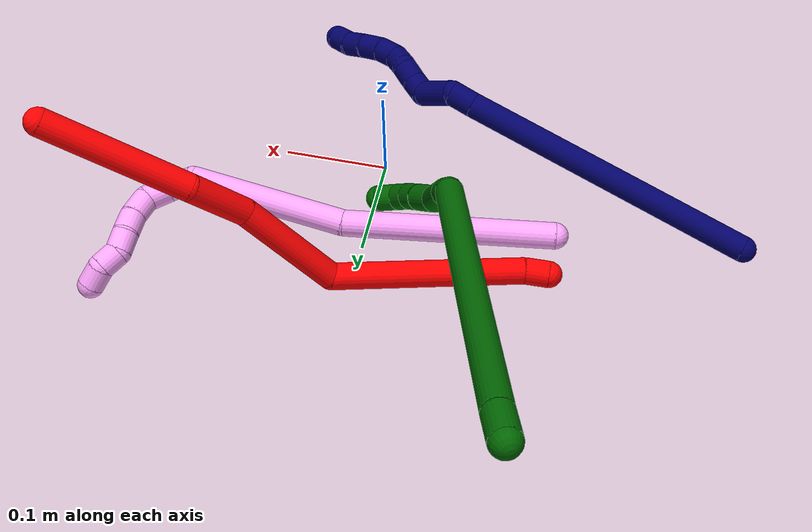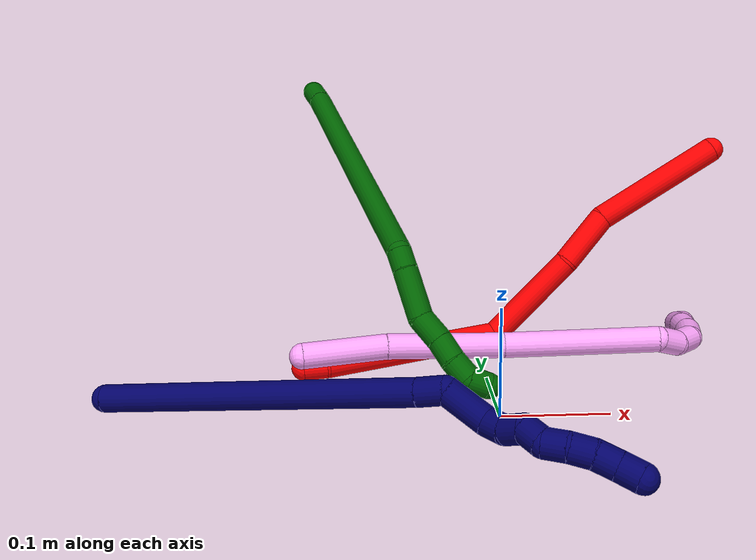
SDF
<sdf version="1.7">
 <world name="default">
  <model name="2">
   <static>0</static>
   <link name="2">
    <collision name="collision-cylinder-e_1_1_4">
     <pose>0.009162 0.001611 0.006476 -0.243884 0.94127 -0.124537</pose>
     <geometry><cylinder><radius>0.0125</radius><length>0.02267</length></cylinder></geometry>
     <surface>
      <friction><ode><mu>1.16</mu><mu2>1.16</mu2><slip1>0</slip1><slip2>0</slip2></ode></friction>
      <contact><ode><kp>1e+06</kp><kd>1</kd><max_vel>0</max_vel><min_depth>0.001</min_depth></ode></contact>
     </surface>
    </collision>
    <visual name="visual-cylinder-e_1_1_4">
     <pose>0.009162 0.001611 0.006476 -0.243884 0.94127 -0.124537</pose>
     <geometry><cylinder><radius>0.0125</radius><length>0.02267</length></cylinder></geometry>
     <material><ambient>1 0 0 1</ambient></material>
    </visual>
    <collision name="collision-cylinder-e_2_4_5">
     <pose>0.083038 0.034474 0.065714 -0.534744 0.812299 -0.234533</pose>
     <geometry><cylinder><radius>0.0125</radius><length>0.178306</length></cylinder></geometry>
     <surface>
      <friction><ode><mu>1.16</mu><mu2>1.16</mu2><slip1>0</slip1><slip2>0</slip2></ode></friction>
      <contact><ode><kp>1e+06</kp><kd>1</kd><max_vel>0</max_vel><min_depth>0.001</min_depth></ode></contact>
     </surface>
    </collision>
    <visual name="visual-cylinder-e_2_4_5">
     <pose>0.083038 0.034474 0.065714 -0.534744 0.812299 -0.234533</pose>
     <geometry><cylinder><radius>0.0125</radius><length>0.178306</length></cylinder></geometry>
     <material><ambient>1 0 0 1</ambient></material>
    </visual>
    <collision name="collision-cylinder-e_3_5_6">
     <pose>0.160251 0.060441 0.169594 0.102998 0.238597 0.012357</pose>
     <geometry><cylinder><radius>0.0125</radius><length>0.105779</length></cylinder></geometry>
     <surface>
      <friction><ode><mu>1.16</mu><mu2>1.16</mu2><slip1>0</slip1><slip2>0</slip2></ode></friction>
      <contact><ode><kp>1e+06</kp><kd>1</kd><max_vel>0</max_vel><min_depth>0.001</min_depth></ode></contact>
     </surface>
    </collision>
    <visual name="visual-cylinder-e_3_5_6">
     <pose>0.160251 0.060441 0.169594 0.102998 0.238597 0.012357</pose>
     <geometry><cylinder><radius>0.0125</radius><length>0.105779</length></cylinder></geometry>
     <material><ambient>1 0 0 1</ambient></material>
    </visual>
    <collision name="collision-cylinder-e_4_6_7">
     <pose>0.177451 0.059719 0.249682 -0.156159 0.158908 -0.012459</pose>
     <geometry><cylinder><radius>0.0125</radius><length>0.059401</length></cylinder></geometry>
     <surface>
      <friction><ode><mu>1.16</mu><mu2>1.16</mu2><slip1>0</slip1><slip2>0</slip2></ode></friction>
      <contact><ode><kp>1e+06</kp><kd>1</kd><max_vel>0</max_vel><min_depth>0.001</min_depth></ode></contact>
     </surface>
    </collision>
    <visual name="visual-cylinder-e_4_6_7">
     <pose>0.177451 0.059719 0.249682 -0.156159 0.158908 -0.012459</pose>
     <geometry><cylinder><radius>0.0125</radius><length>0.059401</length></cylinder></geometry>
     <material><ambient>1 0 0 1</ambient></material>
    </visual>
    <collision name="collision-cylinder-e_5_7_2">
     <pose>0.213005 0.067095 0.33797 -0.047422 0.479172 -0.011586</pose>
     <geometry><cylinder><radius>0.0125</radius><length>0.133844</length></cylinder></geometry>
     <surface>
      <friction><ode><mu>1.16</mu><mu2>1.16</mu2><slip1>0</slip1><slip2>0</slip2></ode></friction>
      <contact><ode><kp>1e+06</kp><kd>1</kd><max_vel>0</max_vel><min_depth>0.001</min_depth></ode></contact>
     </surface>
    </collision>
    <visual name="visual-cylinder-e_5_7_2">
     <pose>0.213005 0.067095 0.33797 -0.047422 0.479172 -0.011586</pose>
     <geometry><cylinder><radius>0.0125</radius><length>0.133844</length></cylinder></geometry>
     <material><ambient>1 0 0 1</ambient></material>
    </visual>
    <collision name="collision-sphere-2">
     <pose>0.243859 0.06991 0.397289 0 -0 0</pose>
     <geometry><sphere><radius>0.0125</radius></sphere></geometry>
     <surface>
      <friction><ode><mu>1.16</mu><mu2>1.16</mu2><slip1>0</slip1><slip2>0</slip2></ode></friction>
      <contact><ode><kp>1e+06</kp><kd>1</kd><max_vel>0</max_vel><min_depth>0.001</min_depth></ode></contact>
     </surface>
    </collision>
    <visual name="visual-sphere-2">
     <pose>0.243859 0.06991 0.397289 0 -0 0</pose>
     <geometry><sphere><radius>0.0125</radius></sphere></geometry>
     <material><ambient>1 0 0 1</ambient></material>
    </visual>
    <collision name="collision-sphere-7">
     <pose>0.182151 0.06428 0.278652 0 -0 0</pose>
     <geometry><sphere><radius>0.0125</radius></sphere></geometry>
     <surface>
      <friction><ode><mu>1.16</mu><mu2>1.16</mu2><slip1>0</slip1><slip2>0</slip2></ode></friction>
      <contact><ode><kp>1e+06</kp><kd>1</kd><max_vel>0</max_vel><min_depth>0.001</min_depth></ode></contact>
     </surface>
    </collision>
    <visual name="visual-sphere-7">
     <pose>0.182151 0.06428 0.278652 0 -0 0</pose>
     <geometry><sphere><radius>0.0125</radius></sphere></geometry>
     <material><ambient>1 0 0 1</ambient></material>
    </visual>
    <collision name="collision-sphere-6">
     <pose>0.172751 0.055158 0.220713 0 -0 0</pose>
     <geometry><sphere><radius>0.0125</radius></sphere></geometry>
     <surface>
      <friction><ode><mu>1.16</mu><mu2>1.16</mu2><slip1>0</slip1><slip2>0</slip2></ode></friction>
      <contact><ode><kp>1e+06</kp><kd>1</kd><max_vel>0</max_vel><min_depth>0.001</min_depth></ode></contact>
     </surface>
    </collision>
    <visual name="visual-sphere-6">
     <pose>0.172751 0.055158 0.220713 0 -0 0</pose>
     <geometry><sphere><radius>0.0125</radius></sphere></geometry>
     <material><ambient>1 0 0 1</ambient></material>
    </visual>
    <collision name="collision-sphere-5">
     <pose>0.147751 0.065725 0.118476 0 -0 0</pose>
     <geometry><sphere><radius>0.0125</radius></sphere></geometry>
     <surface>
      <friction><ode><mu>1.16</mu><mu2>1.16</mu2><slip1>0</slip1><slip2>0</slip2></ode></friction>
      <contact><ode><kp>1e+06</kp><kd>1</kd><max_vel>0</max_vel><min_depth>0.001</min_depth></ode></contact>
     </surface>
    </collision>
    <visual name="visual-sphere-5">
     <pose>0.147751 0.065725 0.118476 0 -0 0</pose>
     <geometry><sphere><radius>0.0125</radius></sphere></geometry>
     <material><ambient>1 0 0 1</ambient></material>
    </visual>
    <collision name="collision-sphere-1">
     <geometry><sphere><radius>0.0125</radius></sphere></geometry>
     <surface>
      <friction><ode><mu>1.16</mu><mu2>1.16</mu2><slip1>0</slip1><slip2>0</slip2></ode></friction>
      <contact><ode><kp>1e+06</kp><kd>1</kd><max_vel>0</max_vel><min_depth>0.001</min_depth></ode></contact>
     </surface>
    </collision>
    <visual name="visual-sphere-1">
     <geometry><sphere><radius>0.0125</radius></sphere></geometry>
     <material><ambient>1 0 0 1</ambient></material>
    </visual>
    <collision name="collision-sphere-4">
     <pose>0.018324 0.003223 0.012952 0 -0 0</pose>
     <geometry><sphere><radius>0.0125</radius></sphere></geometry>
     <surface>
      <friction><ode><mu>1.16</mu><mu2>1.16</mu2><slip1>0</slip1><slip2>0</slip2></ode></friction>
      <contact><ode><kp>1e+06</kp><kd>1</kd><max_vel>0</max_vel><min_depth>0.001</min_depth></ode></contact>
     </surface>
    </collision>
    <visual name="visual-sphere-4">
     <pose>0.018324 0.003223 0.012952 0 -0 0</pose>
     <geometry><sphere><radius>0.0125</radius></sphere></geometry>
     <material><ambient>1 0 0 1</ambient></material>
    </visual>
    <inertial>
     <pose>0.14203 0.050209 0.17974 0 -0 0</pose>
     <mass>0.5</mass>
     <inertia>
      <ixx>0.000564</ixx>
      <ixy>0</ixy>
      <ixz>0</ixz>
      <iyy>0.000698</iyy>
      <iyz>0</iyz>
      <izz>-0.00061</izz>
     </inertia>
    </inertial>
   </link>
   <pose>-0.178806 0.103043 0.013856 -0.250214 0.51243 -0.218898</pose>
  </model>
  <model name="4">
   <static>0</static>
   <link name="4">
    <collision name="collision-cylinder-e_1_1_4">
     <pose>0.028147 -0.025034 -0.015062 2.11244 0.766763 1.23931</pose>
     <geometry><cylinder><radius>0.0125</radius><length>0.081136</length></cylinder></geometry>
     <surface>
      <friction><ode><mu>1.16</mu><mu2>1.16</mu2><slip1>0</slip1><slip2>0</slip2></ode></friction>
      <contact><ode><kp>1e+06</kp><kd>1</kd><max_vel>0</max_vel><min_depth>0.001</min_depth></ode></contact>
     </surface>
    </collision>
    <visual name="visual-cylinder-e_1_1_4">
     <pose>0.028147 -0.025034 -0.015062 2.11244 0.766763 1.23931</pose>
     <geometry><cylinder><radius>0.0125</radius><length>0.081136</length></cylinder></geometry>
     <material><ambient>1 0.65098 0.996078 1</ambient></material>
    </visual>
    <collision name="collision-cylinder-e_2_4_5">
     <pose>0.096207 -0.08878 -0.046435 1.96958 0.759833 1.08314</pose>
     <geometry><cylinder><radius>0.0125</radius><length>0.115894</length></cylinder></geometry>
     <surface>
      <friction><ode><mu>1.16</mu><mu2>1.16</mu2><slip1>0</slip1><slip2>0</slip2></ode></friction>
      <contact><ode><kp>1e+06</kp><kd>1</kd><max_vel>0</max_vel><min_depth>0.001</min_depth></ode></contact>
     </surface>
    </collision>
    <visual name="visual-cylinder-e_2_4_5">
     <pose>0.096207 -0.08878 -0.046435 1.96958 0.759833 1.08314</pose>
     <geometry><cylinder><radius>0.0125</radius><length>0.115894</length></cylinder></geometry>
     <material><ambient>1 0.65098 0.996078 1</ambient></material>
    </visual>
    <collision name="collision-cylinder-e_3_5_6">
     <pose>0.198205 -0.168488 -0.074269 1.84478 0.969594 1.21495</pose>
     <geometry><cylinder><radius>0.0125</radius><length>0.15057</length></cylinder></geometry>
     <surface>
      <friction><ode><mu>1.16</mu><mu2>1.16</mu2><slip1>0</slip1><slip2>0</slip2></ode></friction>
      <contact><ode><kp>1e+06</kp><kd>1</kd><max_vel>0</max_vel><min_depth>0.001</min_depth></ode></contact>
     </surface>
    </collision>
    <visual name="visual-cylinder-e_3_5_6">
     <pose>0.198205 -0.168488 -0.074269 1.84478 0.969594 1.21495</pose>
     <geometry><cylinder><radius>0.0125</radius><length>0.15057</length></cylinder></geometry>
     <material><ambient>1 0.65098 0.996078 1</ambient></material>
    </visual>
    <collision name="collision-cylinder-e_4_6_7">
     <pose>0.264364 -0.220502 -0.09083 1.99975 0.324406 0.498952</pose>
     <geometry><cylinder><radius>0.0125</radius><length>0.025566</length></cylinder></geometry>
     <surface>
      <friction><ode><mu>1.16</mu><mu2>1.16</mu2><slip1>0</slip1><slip2>0</slip2></ode></friction>
      <contact><ode><kp>1e+06</kp><kd>1</kd><max_vel>0</max_vel><min_depth>0.001</min_depth></ode></contact>
     </surface>
    </collision>
    <visual name="visual-cylinder-e_4_6_7">
     <pose>0.264364 -0.220502 -0.09083 1.99975 0.324406 0.498952</pose>
     <geometry><cylinder><radius>0.0125</radius><length>0.025566</length></cylinder></geometry>
     <material><ambient>1 0.65098 0.996078 1</ambient></material>
    </visual>
    <collision name="collision-cylinder-e_5_7_8">
     <pose>0.271467 -0.238913 -0.104433 2.42946 0.26163 0.680027</pose>
     <geometry><cylinder><radius>0.0125</radius><length>0.023422</length></cylinder></geometry>
     <surface>
      <friction><ode><mu>1.16</mu><mu2>1.16</mu2><slip1>0</slip1><slip2>0</slip2></ode></friction>
      <contact><ode><kp>1e+06</kp><kd>1</kd><max_vel>0</max_vel><min_depth>0.001</min_depth></ode></contact>
     </surface>
    </collision>
    <visual name="visual-cylinder-e_5_7_8">
     <pose>0.271467 -0.238913 -0.104433 2.42946 0.26163 0.680027</pose>
     <geometry><cylinder><radius>0.0125</radius><length>0.023422</length></cylinder></geometry>
     <material><ambient>1 0.65098 0.996078 1</ambient></material>
    </visual>
    <collision name="collision-cylinder-e_6_8_9">
     <pose>0.271551 -0.250368 -0.12328 2.76529 -0.260348 -1.20466</pose>
     <geometry><cylinder><radius>0.0125</radius><length>0.022885</length></cylinder></geometry>
     <surface>
      <friction><ode><mu>1.16</mu><mu2>1.16</mu2><slip1>0</slip1><slip2>0</slip2></ode></friction>
      <contact><ode><kp>1e+06</kp><kd>1</kd><max_vel>0</max_vel><min_depth>0.001</min_depth></ode></contact>
     </surface>
    </collision>
    <visual name="visual-cylinder-e_6_8_9">
     <pose>0.271551 -0.250368 -0.12328 2.76529 -0.260348 -1.20466</pose>
     <geometry><cylinder><radius>0.0125</radius><length>0.022885</length></cylinder></geometry>
     <material><ambient>1 0.65098 0.996078 1</ambient></material>
    </visual>
    <collision name="collision-cylinder-e_7_9_10">
     <pose>0.264102 -0.257204 -0.142057 2.82607 -0.466834 -1.9622</pose>
     <geometry><cylinder><radius>0.0125</radius><length>0.020012</length></cylinder></geometry>
     <surface>
      <friction><ode><mu>1.16</mu><mu2>1.16</mu2><slip1>0</slip1><slip2>0</slip2></ode></friction>
      <contact><ode><kp>1e+06</kp><kd>1</kd><max_vel>0</max_vel><min_depth>0.001</min_depth></ode></contact>
     </surface>
    </collision>
    <visual name="visual-cylinder-e_7_9_10">
     <pose>0.264102 -0.257204 -0.142057 2.82607 -0.466834 -1.9622</pose>
     <geometry><cylinder><radius>0.0125</radius><length>0.020012</length></cylinder></geometry>
     <material><ambient>1 0.65098 0.996078 1</ambient></material>
    </visual>
    <collision name="collision-cylinder-e_8_10_11">
     <pose>0.254572 -0.264649 -0.157975 2.5799 -0.520371 -1.4906</pose>
     <geometry><cylinder><radius>0.0125</radius><length>0.020218</length></cylinder></geometry>
     <surface>
      <friction><ode><mu>1.16</mu><mu2>1.16</mu2><slip1>0</slip1><slip2>0</slip2></ode></friction>
      <contact><ode><kp>1e+06</kp><kd>1</kd><max_vel>0</max_vel><min_depth>0.001</min_depth></ode></contact>
     </surface>
    </collision>
    <visual name="visual-cylinder-e_8_10_11">
     <pose>0.254572 -0.264649 -0.157975 2.5799 -0.520371 -1.4906</pose>
     <geometry><cylinder><radius>0.0125</radius><length>0.020218</length></cylinder></geometry>
     <material><ambient>1 0.65098 0.996078 1</ambient></material>
    </visual>
    <collision name="collision-cylinder-e_9_11_12">
     <pose>0.249193 -0.276446 -0.172461 2.35172 -0.035192 -0.084385</pose>
     <geometry><cylinder><radius>0.0125</radius><length>0.020077</length></cylinder></geometry>
     <surface>
      <friction><ode><mu>1.16</mu><mu2>1.16</mu2><slip1>0</slip1><slip2>0</slip2></ode></friction>
      <contact><ode><kp>1e+06</kp><kd>1</kd><max_vel>0</max_vel><min_depth>0.001</min_depth></ode></contact>
     </surface>
    </collision>
    <visual name="visual-cylinder-e_9_11_12">
     <pose>0.249193 -0.276446 -0.172461 2.35172 -0.035192 -0.084385</pose>
     <geometry><cylinder><radius>0.0125</radius><length>0.020077</length></cylinder></geometry>
     <material><ambient>1 0.65098 0.996078 1</ambient></material>
    </visual>
    <collision name="collision-cylinder-e_10_12_2">
     <pose>0.245946 -0.292852 -0.182298 1.86143 -0.290327 -0.387704</pose>
     <geometry><cylinder><radius>0.0125</radius><length>0.020219</length></cylinder></geometry>
     <surface>
      <friction><ode><mu>1.16</mu><mu2>1.16</mu2><slip1>0</slip1><slip2>0</slip2></ode></friction>
      <contact><ode><kp>1e+06</kp><kd>1</kd><max_vel>0</max_vel><min_depth>0.001</min_depth></ode></contact>
     </surface>
    </collision>
    <visual name="visual-cylinder-e_10_12_2">
     <pose>0.245946 -0.292852 -0.182298 1.86143 -0.290327 -0.387704</pose>
     <geometry><cylinder><radius>0.0125</radius><length>0.020219</length></cylinder></geometry>
     <material><ambient>1 0.65098 0.996078 1</ambient></material>
    </visual>
    <collision name="collision-sphere-2">
     <pose>0.243052 -0.302132 -0.185074 0 -0 0</pose>
     <geometry><sphere><radius>0.0125</radius></sphere></geometry>
     <surface>
      <friction><ode><mu>1.16</mu><mu2>1.16</mu2><slip1>0</slip1><slip2>0</slip2></ode></friction>
      <contact><ode><kp>1e+06</kp><kd>1</kd><max_vel>0</max_vel><min_depth>0.001</min_depth></ode></contact>
     </surface>
    </collision>
    <visual name="visual-sphere-2">
     <pose>0.243052 -0.302132 -0.185074 0 -0 0</pose>
     <geometry><sphere><radius>0.0125</radius></sphere></geometry>
     <material><ambient>1 0.65098 0.996078 1</ambient></material>
    </visual>
    <collision name="collision-sphere-12">
     <pose>0.24884 -0.283572 -0.179523 0 -0 0</pose>
     <geometry><sphere><radius>0.0125</radius></sphere></geometry>
     <surface>
      <friction><ode><mu>1.16</mu><mu2>1.16</mu2><slip1>0</slip1><slip2>0</slip2></ode></friction>
      <contact><ode><kp>1e+06</kp><kd>1</kd><max_vel>0</max_vel><min_depth>0.001</min_depth></ode></contact>
     </surface>
    </collision>
    <visual name="visual-sphere-12">
     <pose>0.24884 -0.283572 -0.179523 0 -0 0</pose>
     <geometry><sphere><radius>0.0125</radius></sphere></geometry>
     <material><ambient>1 0.65098 0.996078 1</ambient></material>
    </visual>
    <collision name="collision-sphere-11">
     <pose>0.249546 -0.269321 -0.165399 0 -0 0</pose>
     <geometry><sphere><radius>0.0125</radius></sphere></geometry>
     <surface>
      <friction><ode><mu>1.16</mu><mu2>1.16</mu2><slip1>0</slip1><slip2>0</slip2></ode></friction>
      <contact><ode><kp>1e+06</kp><kd>1</kd><max_vel>0</max_vel><min_depth>0.001</min_depth></ode></contact>
     </surface>
    </collision>
    <visual name="visual-sphere-11">
     <pose>0.249546 -0.269321 -0.165399 0 -0 0</pose>
     <geometry><sphere><radius>0.0125</radius></sphere></geometry>
     <material><ambient>1 0.65098 0.996078 1</ambient></material>
    </visual>
    <collision name="collision-sphere-10">
     <pose>0.259599 -0.259977 -0.150552 0 -0 0</pose>
     <geometry><sphere><radius>0.0125</radius></sphere></geometry>
     <surface>
      <friction><ode><mu>1.16</mu><mu2>1.16</mu2><slip1>0</slip1><slip2>0</slip2></ode></friction>
      <contact><ode><kp>1e+06</kp><kd>1</kd><max_vel>0</max_vel><min_depth>0.001</min_depth></ode></contact>
     </surface>
    </collision>
    <visual name="visual-sphere-10">
     <pose>0.259599 -0.259977 -0.150552 0 -0 0</pose>
     <geometry><sphere><radius>0.0125</radius></sphere></geometry>
     <material><ambient>1 0.65098 0.996078 1</ambient></material>
    </visual>
    <collision name="collision-sphere-9">
     <pose>0.268606 -0.254431 -0.133563 0 -0 0</pose>
     <geometry><sphere><radius>0.0125</radius></sphere></geometry>
     <surface>
      <friction><ode><mu>1.16</mu><mu2>1.16</mu2><slip1>0</slip1><slip2>0</slip2></ode></friction>
      <contact><ode><kp>1e+06</kp><kd>1</kd><max_vel>0</max_vel><min_depth>0.001</min_depth></ode></contact>
     </surface>
    </collision>
    <visual name="visual-sphere-9">
     <pose>0.268606 -0.254431 -0.133563 0 -0 0</pose>
     <geometry><sphere><radius>0.0125</radius></sphere></geometry>
     <material><ambient>1 0.65098 0.996078 1</ambient></material>
    </visual>
    <collision name="collision-sphere-4">
     <pose>0.056293 -0.050067 -0.030124 0 -0 0</pose>
     <geometry><sphere><radius>0.0125</radius></sphere></geometry>
     <surface>
      <friction><ode><mu>1.16</mu><mu2>1.16</mu2><slip1>0</slip1><slip2>0</slip2></ode></friction>
      <contact><ode><kp>1e+06</kp><kd>1</kd><max_vel>0</max_vel><min_depth>0.001</min_depth></ode></contact>
     </surface>
    </collision>
    <visual name="visual-sphere-4">
     <pose>0.056293 -0.050067 -0.030124 0 -0 0</pose>
     <geometry><sphere><radius>0.0125</radius></sphere></geometry>
     <material><ambient>1 0.65098 0.996078 1</ambient></material>
    </visual>
    <collision name="collision-sphere-1">
     <geometry><sphere><radius>0.0125</radius></sphere></geometry>
     <surface>
      <friction><ode><mu>1.16</mu><mu2>1.16</mu2><slip1>0</slip1><slip2>0</slip2></ode></friction>
      <contact><ode><kp>1e+06</kp><kd>1</kd><max_vel>0</max_vel><min_depth>0.001</min_depth></ode></contact>
     </surface>
    </collision>
    <visual name="visual-sphere-1">
     <geometry><sphere><radius>0.0125</radius></sphere></geometry>
     <material><ambient>1 0.65098 0.996078 1</ambient></material>
    </visual>
    <collision name="collision-sphere-8">
     <pose>0.274497 -0.246305 -0.112996 0 -0 0</pose>
     <geometry><sphere><radius>0.0125</radius></sphere></geometry>
     <surface>
      <friction><ode><mu>1.16</mu><mu2>1.16</mu2><slip1>0</slip1><slip2>0</slip2></ode></friction>
      <contact><ode><kp>1e+06</kp><kd>1</kd><max_vel>0</max_vel><min_depth>0.001</min_depth></ode></contact>
     </surface>
    </collision>
    <visual name="visual-sphere-8">
     <pose>0.274497 -0.246305 -0.112996 0 -0 0</pose>
     <geometry><sphere><radius>0.0125</radius></sphere></geometry>
     <material><ambient>1 0.65098 0.996078 1</ambient></material>
    </visual>
    <collision name="collision-sphere-5">
     <pose>0.136121 -0.127492 -0.062747 0 -0 0</pose>
     <geometry><sphere><radius>0.0125</radius></sphere></geometry>
     <surface>
      <friction><ode><mu>1.16</mu><mu2>1.16</mu2><slip1>0</slip1><slip2>0</slip2></ode></friction>
      <contact><ode><kp>1e+06</kp><kd>1</kd><max_vel>0</max_vel><min_depth>0.001</min_depth></ode></contact>
     </surface>
    </collision>
    <visual name="visual-sphere-5">
     <pose>0.136121 -0.127492 -0.062747 0 -0 0</pose>
     <geometry><sphere><radius>0.0125</radius></sphere></geometry>
     <material><ambient>1 0.65098 0.996078 1</ambient></material>
    </visual>
    <collision name="collision-sphere-6">
     <pose>0.260289 -0.209483 -0.085791 0 -0 0</pose>
     <geometry><sphere><radius>0.0125</radius></sphere></geometry>
     <surface>
      <friction><ode><mu>1.16</mu><mu2>1.16</mu2><slip1>0</slip1><slip2>0</slip2></ode></friction>
      <contact><ode><kp>1e+06</kp><kd>1</kd><max_vel>0</max_vel><min_depth>0.001</min_depth></ode></contact>
     </surface>
    </collision>
    <visual name="visual-sphere-6">
     <pose>0.260289 -0.209483 -0.085791 0 -0 0</pose>
     <geometry><sphere><radius>0.0125</radius></sphere></geometry>
     <material><ambient>1 0.65098 0.996078 1</ambient></material>
    </visual>
    <collision name="collision-sphere-7">
     <pose>0.268438 -0.231521 -0.09587 0 -0 0</pose>
     <geometry><sphere><radius>0.0125</radius></sphere></geometry>
     <surface>
      <friction><ode><mu>1.16</mu><mu2>1.16</mu2><slip1>0</slip1><slip2>0</slip2></ode></friction>
      <contact><ode><kp>1e+06</kp><kd>1</kd><max_vel>0</max_vel><min_depth>0.001</min_depth></ode></contact>
     </surface>
    </collision>
    <visual name="visual-sphere-7">
     <pose>0.268438 -0.231521 -0.09587 0 -0 0</pose>
     <geometry><sphere><radius>0.0125</radius></sphere></geometry>
     <material><ambient>1 0.65098 0.996078 1</ambient></material>
    </visual>
    <inertial>
     <pose>0.166034 -0.153243 -0.077122 0 -0 0</pose>
     <mass>0.5</mass>
     <inertia>
      <ixx>0.000409</ixx>
      <ixy>0</ixy>
      <ixz>0</ixz>
      <iyy>0.000502</iyy>
      <iyz>0</iyz>
      <izz>-9.4e-05</izz>
     </inertia>
    </inertial>
   </link>
   <pose>-0.178516 0.074032 0.035349 2.14102 -0.48674 -0.539501</pose>
  </model>
  <model name="6">
   <static>0</static>
   <link name="6">
    <collision name="collision-cylinder-e_1_1_4">
     <pose>0.002176 0.00065 -0.013988 -3.09518 0.154178 -2.55779</pose>
     <geometry><cylinder><radius>0.0125</radius><length>0.028342</length></cylinder></geometry>
     <surface>
      <friction><ode><mu>1.16</mu><mu2>1.16</mu2><slip1>0</slip1><slip2>0</slip2></ode></friction>
      <contact><ode><kp>1e+06</kp><kd>1</kd><max_vel>0</max_vel><min_depth>0.001</min_depth></ode></contact>
     </surface>
    </collision>
    <visual name="visual-cylinder-e_1_1_4">
     <pose>0.002176 0.00065 -0.013988 -3.09518 0.154178 -2.55779</pose>
     <geometry><cylinder><radius>0.0125</radius><length>0.028342</length></cylinder></geometry>
     <material><ambient>0 0.392157 0.003922 1</ambient></material>
    </visual>
    <collision name="collision-cylinder-e_2_4_5">
     <pose>0.037452 0.001496 -0.178497 -3.14029 0.216457 -3.12959</pose>
     <geometry><cylinder><radius>0.0125</radius><length>0.308236</length></cylinder></geometry>
     <surface>
      <friction><ode><mu>1.16</mu><mu2>1.16</mu2><slip1>0</slip1><slip2>0</slip2></ode></friction>
      <contact><ode><kp>1e+06</kp><kd>1</kd><max_vel>0</max_vel><min_depth>0.001</min_depth></ode></contact>
     </surface>
    </collision>
    <visual name="visual-cylinder-e_2_4_5">
     <pose>0.037452 0.001496 -0.178497 -3.14029 0.216457 -3.12959</pose>
     <geometry><cylinder><radius>0.0125</radius><length>0.308236</length></cylinder></geometry>
     <material><ambient>0 0.392157 0.003922 1</ambient></material>
    </visual>
    <collision name="collision-cylinder-e_3_5_6">
     <pose>0.073862 -0.003379 -0.33745 2.60015 0.324452 1.06564</pose>
     <geometry><cylinder><radius>0.0125</radius><length>0.020762</length></cylinder></geometry>
     <surface>
      <friction><ode><mu>1.16</mu><mu2>1.16</mu2><slip1>0</slip1><slip2>0</slip2></ode></friction>
      <contact><ode><kp>1e+06</kp><kd>1</kd><max_vel>0</max_vel><min_depth>0.001</min_depth></ode></contact>
     </surface>
    </collision>
    <visual name="visual-cylinder-e_3_5_6">
     <pose>0.073862 -0.003379 -0.33745 2.60015 0.324452 1.06564</pose>
     <geometry><cylinder><radius>0.0125</radius><length>0.020762</length></cylinder></geometry>
     <material><ambient>0 0.392157 0.003922 1</ambient></material>
    </visual>
    <collision name="collision-cylinder-e_4_6_7">
     <pose>0.085112 -0.022185 -0.364602 2.50859 0.32957 0.939649</pose>
     <geometry><cylinder><radius>0.0125</radius><length>0.049077</length></cylinder></geometry>
     <surface>
      <friction><ode><mu>1.16</mu><mu2>1.16</mu2><slip1>0</slip1><slip2>0</slip2></ode></friction>
      <contact><ode><kp>1e+06</kp><kd>1</kd><max_vel>0</max_vel><min_depth>0.001</min_depth></ode></contact>
     </surface>
    </collision>
    <visual name="visual-cylinder-e_4_6_7">
     <pose>0.085112 -0.022185 -0.364602 2.50859 0.32957 0.939649</pose>
     <geometry><cylinder><radius>0.0125</radius><length>0.049077</length></cylinder></geometry>
     <material><ambient>0 0.392157 0.003922 1</ambient></material>
    </visual>
    <collision name="collision-cylinder-e_5_7_8">
     <pose>0.092354 -0.043062 -0.395241 2.60179 -0.050302 -0.181366</pose>
     <geometry><cylinder><radius>0.0125</radius><length>0.027827</length></cylinder></geometry>
     <surface>
      <friction><ode><mu>1.16</mu><mu2>1.16</mu2><slip1>0</slip1><slip2>0</slip2></ode></friction>
      <contact><ode><kp>1e+06</kp><kd>1</kd><max_vel>0</max_vel><min_depth>0.001</min_depth></ode></contact>
     </surface>
    </collision>
    <visual name="visual-cylinder-e_5_7_8">
     <pose>0.092354 -0.043062 -0.395241 2.60179 -0.050302 -0.181366</pose>
     <geometry><cylinder><radius>0.0125</radius><length>0.027827</length></cylinder></geometry>
     <material><ambient>0 0.392157 0.003922 1</ambient></material>
    </visual>
    <collision name="collision-cylinder-e_6_8_9">
     <pose>0.092545 -0.056117 -0.41732 2.61446 0.075621 0.278559</pose>
     <geometry><cylinder><radius>0.0125</radius><length>0.023575</length></cylinder></geometry>
     <surface>
      <friction><ode><mu>1.16</mu><mu2>1.16</mu2><slip1>0</slip1><slip2>0</slip2></ode></friction>
      <contact><ode><kp>1e+06</kp><kd>1</kd><max_vel>0</max_vel><min_depth>0.001</min_depth></ode></contact>
     </surface>
    </collision>
    <visual name="visual-cylinder-e_6_8_9">
     <pose>0.092545 -0.056117 -0.41732 2.61446 0.075621 0.278559</pose>
     <geometry><cylinder><radius>0.0125</radius><length>0.023575</length></cylinder></geometry>
     <material><ambient>0 0.392157 0.003922 1</ambient></material>
    </visual>
    <collision name="collision-cylinder-e_7_9_10">
     <pose>0.09267 -0.068461 -0.436393 2.51659 -0.069586 -0.214635</pose>
     <geometry><cylinder><radius>0.0125</radius><length>0.022039</length></cylinder></geometry>
     <surface>
      <friction><ode><mu>1.16</mu><mu2>1.16</mu2><slip1>0</slip1><slip2>0</slip2></ode></friction>
      <contact><ode><kp>1e+06</kp><kd>1</kd><max_vel>0</max_vel><min_depth>0.001</min_depth></ode></contact>
     </surface>
    </collision>
    <visual name="visual-cylinder-e_7_9_10">
     <pose>0.09267 -0.068461 -0.436393 2.51659 -0.069586 -0.214635</pose>
     <geometry><cylinder><radius>0.0125</radius><length>0.022039</length></cylinder></geometry>
     <material><ambient>0 0.392157 0.003922 1</ambient></material>
    </visual>
    <collision name="collision-cylinder-e_8_10_2">
     <pose>0.086093 -0.080998 -0.450821 2.30533 -0.614942 -1.24097</pose>
     <geometry><cylinder><radius>0.0125</radius><length>0.020142</length></cylinder></geometry>
     <surface>
      <friction><ode><mu>1.16</mu><mu2>1.16</mu2><slip1>0</slip1><slip2>0</slip2></ode></friction>
      <contact><ode><kp>1e+06</kp><kd>1</kd><max_vel>0</max_vel><min_depth>0.001</min_depth></ode></contact>
     </surface>
    </collision>
    <visual name="visual-cylinder-e_8_10_2">
     <pose>0.086093 -0.080998 -0.450821 2.30533 -0.614942 -1.24097</pose>
     <geometry><cylinder><radius>0.0125</radius><length>0.020142</length></cylinder></geometry>
     <material><ambient>0 0.392157 0.003922 1</ambient></material>
    </visual>
    <collision name="collision-sphere-2">
     <pose>0.080283 -0.087103 -0.456335 0 -0 0</pose>
     <geometry><sphere><radius>0.0125</radius></sphere></geometry>
     <surface>
      <friction><ode><mu>1.16</mu><mu2>1.16</mu2><slip1>0</slip1><slip2>0</slip2></ode></friction>
      <contact><ode><kp>1e+06</kp><kd>1</kd><max_vel>0</max_vel><min_depth>0.001</min_depth></ode></contact>
     </surface>
    </collision>
    <visual name="visual-sphere-2">
     <pose>0.080283 -0.087103 -0.456335 0 -0 0</pose>
     <geometry><sphere><radius>0.0125</radius></sphere></geometry>
     <material><ambient>0 0.392157 0.003922 1</ambient></material>
    </visual>
    <collision name="collision-sphere-10">
     <pose>0.091904 -0.074893 -0.445307 0 -0 0</pose>
     <geometry><sphere><radius>0.0125</radius></sphere></geometry>
     <surface>
      <friction><ode><mu>1.16</mu><mu2>1.16</mu2><slip1>0</slip1><slip2>0</slip2></ode></friction>
      <contact><ode><kp>1e+06</kp><kd>1</kd><max_vel>0</max_vel><min_depth>0.001</min_depth></ode></contact>
     </surface>
    </collision>
    <visual name="visual-sphere-10">
     <pose>0.091904 -0.074893 -0.445307 0 -0 0</pose>
     <geometry><sphere><radius>0.0125</radius></sphere></geometry>
     <material><ambient>0 0.392157 0.003922 1</ambient></material>
    </visual>
    <collision name="collision-sphere-9">
     <pose>0.093436 -0.06203 -0.427478 0 -0 0</pose>
     <geometry><sphere><radius>0.0125</radius></sphere></geometry>
     <surface>
      <friction><ode><mu>1.16</mu><mu2>1.16</mu2><slip1>0</slip1><slip2>0</slip2></ode></friction>
      <contact><ode><kp>1e+06</kp><kd>1</kd><max_vel>0</max_vel><min_depth>0.001</min_depth></ode></contact>
     </surface>
    </collision>
    <visual name="visual-sphere-9">
     <pose>0.093436 -0.06203 -0.427478 0 -0 0</pose>
     <geometry><sphere><radius>0.0125</radius></sphere></geometry>
     <material><ambient>0 0.392157 0.003922 1</ambient></material>
    </visual>
    <collision name="collision-sphere-4">
     <pose>0.004352 0.001299 -0.027976 0 -0 0</pose>
     <geometry><sphere><radius>0.0125</radius></sphere></geometry>
     <surface>
      <friction><ode><mu>1.16</mu><mu2>1.16</mu2><slip1>0</slip1><slip2>0</slip2></ode></friction>
      <contact><ode><kp>1e+06</kp><kd>1</kd><max_vel>0</max_vel><min_depth>0.001</min_depth></ode></contact>
     </surface>
    </collision>
    <visual name="visual-sphere-4">
     <pose>0.004352 0.001299 -0.027976 0 -0 0</pose>
     <geometry><sphere><radius>0.0125</radius></sphere></geometry>
     <material><ambient>0 0.392157 0.003922 1</ambient></material>
    </visual>
    <collision name="collision-sphere-1">
     <geometry><sphere><radius>0.0125</radius></sphere></geometry>
     <surface>
      <friction><ode><mu>1.16</mu><mu2>1.16</mu2><slip1>0</slip1><slip2>0</slip2></ode></friction>
      <contact><ode><kp>1e+06</kp><kd>1</kd><max_vel>0</max_vel><min_depth>0.001</min_depth></ode></contact>
     </surface>
    </collision>
    <visual name="visual-sphere-1">
     <geometry><sphere><radius>0.0125</radius></sphere></geometry>
     <material><ambient>0 0.392157 0.003922 1</ambient></material>
    </visual>
    <collision name="collision-sphere-8">
     <pose>0.091655 -0.050204 -0.407161 0 -0 0</pose>
     <geometry><sphere><radius>0.0125</radius></sphere></geometry>
     <surface>
      <friction><ode><mu>1.16</mu><mu2>1.16</mu2><slip1>0</slip1><slip2>0</slip2></ode></friction>
      <contact><ode><kp>1e+06</kp><kd>1</kd><max_vel>0</max_vel><min_depth>0.001</min_depth></ode></contact>
     </surface>
    </collision>
    <visual name="visual-sphere-8">
     <pose>0.091655 -0.050204 -0.407161 0 -0 0</pose>
     <geometry><sphere><radius>0.0125</radius></sphere></geometry>
     <material><ambient>0 0.392157 0.003922 1</ambient></material>
    </visual>
    <collision name="collision-sphere-5">
     <pose>0.070552 0.001692 -0.329018 0 -0 0</pose>
     <geometry><sphere><radius>0.0125</radius></sphere></geometry>
     <surface>
      <friction><ode><mu>1.16</mu><mu2>1.16</mu2><slip1>0</slip1><slip2>0</slip2></ode></friction>
      <contact><ode><kp>1e+06</kp><kd>1</kd><max_vel>0</max_vel><min_depth>0.001</min_depth></ode></contact>
     </surface>
    </collision>
    <visual name="visual-sphere-5">
     <pose>0.070552 0.001692 -0.329018 0 -0 0</pose>
     <geometry><sphere><radius>0.0125</radius></sphere></geometry>
     <material><ambient>0 0.392157 0.003922 1</ambient></material>
    </visual>
    <collision name="collision-sphere-6">
     <pose>0.077171 -0.00845 -0.345882 0 -0 0</pose>
     <geometry><sphere><radius>0.0125</radius></sphere></geometry>
     <surface>
      <friction><ode><mu>1.16</mu><mu2>1.16</mu2><slip1>0</slip1><slip2>0</slip2></ode></friction>
      <contact><ode><kp>1e+06</kp><kd>1</kd><max_vel>0</max_vel><min_depth>0.001</min_depth></ode></contact>
     </surface>
    </collision>
    <visual name="visual-sphere-6">
     <pose>0.077171 -0.00845 -0.345882 0 -0 0</pose>
     <geometry><sphere><radius>0.0125</radius></sphere></geometry>
     <material><ambient>0 0.392157 0.003922 1</ambient></material>
    </visual>
    <collision name="collision-sphere-7">
     <pose>0.093054 -0.03592 -0.383321 0 -0 0</pose>
     <geometry><sphere><radius>0.0125</radius></sphere></geometry>
     <surface>
      <friction><ode><mu>1.16</mu><mu2>1.16</mu2><slip1>0</slip1><slip2>0</slip2></ode></friction>
      <contact><ode><kp>1e+06</kp><kd>1</kd><max_vel>0</max_vel><min_depth>0.001</min_depth></ode></contact>
     </surface>
    </collision>
    <visual name="visual-sphere-7">
     <pose>0.093054 -0.03592 -0.383321 0 -0 0</pose>
     <geometry><sphere><radius>0.0125</radius></sphere></geometry>
     <material><ambient>0 0.392157 0.003922 1</ambient></material>
    </visual>
    <inertial>
     <pose>0.051689 -0.012682 -0.2397 0 -0 0</pose>
     <mass>0.5</mass>
     <inertia>
      <ixx>-0.002399</ixx>
      <ixy>0</ixy>
      <ixz>0</ixz>
      <iyy>0.002417</iyy>
      <iyz>0</iyz>
      <izz>-0.000558</izz>
     </inertia>
    </inertial>
   </link>
   <pose>-0.178162 0.407931 0.260555 1.2134 0.528229 -2.82416</pose>
  </model>
  <model name="7">
   <static>0</static>
   <link name="7">
    <collision name="collision-cylinder-e_1_1_4">
     <pose>0.129506 -0.008651 0.068751 0.125168 1.0795 0.07505</pose>
     <geometry><cylinder><radius>0.0125</radius><length>0.293756</length></cylinder></geometry>
     <surface>
      <friction><ode><mu>1.16</mu><mu2>1.16</mu2><slip1>0</slip1><slip2>0</slip2></ode></friction>
      <contact><ode><kp>1e+06</kp><kd>1</kd><max_vel>0</max_vel><min_depth>0.001</min_depth></ode></contact>
     </surface>
    </collision>
    <visual name="visual-cylinder-e_1_1_4">
     <pose>0.129506 -0.008651 0.068751 0.125168 1.0795 0.07505</pose>
     <geometry><cylinder><radius>0.0125</radius><length>0.293756</length></cylinder></geometry>
     <material><ambient>0.003922 0 0.403922 1</ambient></material>
    </visual>
    <collision name="collision-cylinder-e_2_4_5">
     <pose>0.269754 -0.01746 0.14358 0.026171 1.05576 0.01526</pose>
     <geometry><cylinder><radius>0.0125</radius><length>0.024689</length></cylinder></geometry>
     <surface>
      <friction><ode><mu>1.16</mu><mu2>1.16</mu2><slip1>0</slip1><slip2>0</slip2></ode></friction>
      <contact><ode><kp>1e+06</kp><kd>1</kd><max_vel>0</max_vel><min_depth>0.001</min_depth></ode></contact>
     </surface>
    </collision>
    <visual name="visual-cylinder-e_2_4_5">
     <pose>0.269754 -0.01746 0.14358 0.026171 1.05576 0.01526</pose>
     <geometry><cylinder><radius>0.0125</radius><length>0.024689</length></cylinder></geometry>
     <material><ambient>0.003922 0 0.403922 1</ambient></material>
    </visual>
    <collision name="collision-cylinder-e_3_5_6">
     <pose>0.296696 -0.030285 0.151507 1.42583 0.902071 0.793145</pose>
     <geometry><cylinder><radius>0.0125</radius><length>0.04129</length></cylinder></geometry>
     <surface>
      <friction><ode><mu>1.16</mu><mu2>1.16</mu2><slip1>0</slip1><slip2>0</slip2></ode></friction>
      <contact><ode><kp>1e+06</kp><kd>1</kd><max_vel>0</max_vel><min_depth>0.001</min_depth></ode></contact>
     </surface>
    </collision>
    <visual name="visual-cylinder-e_3_5_6">
     <pose>0.296696 -0.030285 0.151507 1.42583 0.902071 0.793145</pose>
     <geometry><cylinder><radius>0.0125</radius><length>0.04129</length></cylinder></geometry>
     <material><ambient>0.003922 0 0.403922 1</ambient></material>
    </visual>
    <collision name="collision-cylinder-e_4_6_7">
     <pose>0.3184 -0.047639 0.160273 0.595778 0.582592 0.18359</pose>
     <geometry><cylinder><radius>0.0125</radius><length>0.020014</length></cylinder></geometry>
     <surface>
      <friction><ode><mu>1.16</mu><mu2>1.16</mu2><slip1>0</slip1><slip2>0</slip2></ode></friction>
      <contact><ode><kp>1e+06</kp><kd>1</kd><max_vel>0</max_vel><min_depth>0.001</min_depth></ode></contact>
     </surface>
    </collision>
    <visual name="visual-cylinder-e_4_6_7">
     <pose>0.3184 -0.047639 0.160273 0.595778 0.582592 0.18359</pose>
     <geometry><cylinder><radius>0.0125</radius><length>0.020014</length></cylinder></geometry>
     <material><ambient>0.003922 0 0.403922 1</ambient></material>
    </visual>
    <collision name="collision-cylinder-e_5_7_8">
     <pose>0.32968 -0.053157 0.175352 0.101169 0.613263 0.032057</pose>
     <geometry><cylinder><radius>0.0125</radius><length>0.020065</length></cylinder></geometry>
     <surface>
      <friction><ode><mu>1.16</mu><mu2>1.16</mu2><slip1>0</slip1><slip2>0</slip2></ode></friction>
      <contact><ode><kp>1e+06</kp><kd>1</kd><max_vel>0</max_vel><min_depth>0.001</min_depth></ode></contact>
     </surface>
    </collision>
    <visual name="visual-cylinder-e_5_7_8">
     <pose>0.32968 -0.053157 0.175352 0.101169 0.613263 0.032057</pose>
     <geometry><cylinder><radius>0.0125</radius><length>0.020065</length></cylinder></geometry>
     <material><ambient>0.003922 0 0.403922 1</ambient></material>
    </visual>
    <collision name="collision-cylinder-e_6_8_9">
     <pose>0.340522 -0.060354 0.189412 0.823806 0.528535 0.235352</pose>
     <geometry><cylinder><radius>0.0125</radius><length>0.020103</length></cylinder></geometry>
     <surface>
      <friction><ode><mu>1.16</mu><mu2>1.16</mu2><slip1>0</slip1><slip2>0</slip2></ode></friction>
      <contact><ode><kp>1e+06</kp><kd>1</kd><max_vel>0</max_vel><min_depth>0.001</min_depth></ode></contact>
     </surface>
    </collision>
    <visual name="visual-cylinder-e_6_8_9">
     <pose>0.340522 -0.060354 0.189412 0.823806 0.528535 0.235352</pose>
     <geometry><cylinder><radius>0.0125</radius><length>0.020103</length></cylinder></geometry>
     <material><ambient>0.003922 0 0.403922 1</ambient></material>
    </visual>
    <collision name="collision-cylinder-e_7_9_10">
     <pose>0.354221 -0.068968 0.19984 0.459926 1.04081 0.266737</pose>
     <geometry><cylinder><radius>0.0125</radius><length>0.020004</length></cylinder></geometry>
     <surface>
      <friction><ode><mu>1.16</mu><mu2>1.16</mu2><slip1>0</slip1><slip2>0</slip2></ode></friction>
      <contact><ode><kp>1e+06</kp><kd>1</kd><max_vel>0</max_vel><min_depth>0.001</min_depth></ode></contact>
     </surface>
    </collision>
    <visual name="visual-cylinder-e_7_9_10">
     <pose>0.354221 -0.068968 0.19984 0.459926 1.04081 0.266737</pose>
     <geometry><cylinder><radius>0.0125</radius><length>0.020004</length></cylinder></geometry>
     <material><ambient>0.003922 0 0.403922 1</ambient></material>
    </visual>
    <collision name="collision-cylinder-e_8_10_11">
     <pose>0.372155 -0.07409 0.206803 0.869203 1.18603 0.606391</pose>
     <geometry><cylinder><radius>0.0125</radius><length>0.020076</length></cylinder></geometry>
     <surface>
      <friction><ode><mu>1.16</mu><mu2>1.16</mu2><slip1>0</slip1><slip2>0</slip2></ode></friction>
      <contact><ode><kp>1e+06</kp><kd>1</kd><max_vel>0</max_vel><min_depth>0.001</min_depth></ode></contact>
     </surface>
    </collision>
    <visual name="visual-cylinder-e_8_10_11">
     <pose>0.372155 -0.07409 0.206803 0.869203 1.18603 0.606391</pose>
     <geometry><cylinder><radius>0.0125</radius><length>0.020076</length></cylinder></geometry>
     <material><ambient>0.003922 0 0.403922 1</ambient></material>
    </visual>
    <collision name="collision-cylinder-e_9_11_12">
     <pose>0.390088 -0.081586 0.211291 1.15182 1.04078 0.712487</pose>
     <geometry><cylinder><radius>0.0125</radius><length>0.020002</length></cylinder></geometry>
     <surface>
      <friction><ode><mu>1.16</mu><mu2>1.16</mu2><slip1>0</slip1><slip2>0</slip2></ode></friction>
      <contact><ode><kp>1e+06</kp><kd>1</kd><max_vel>0</max_vel><min_depth>0.001</min_depth></ode></contact>
     </surface>
    </collision>
    <visual name="visual-cylinder-e_9_11_12">
     <pose>0.390088 -0.081586 0.211291 1.15182 1.04078 0.712487</pose>
     <geometry><cylinder><radius>0.0125</radius><length>0.020002</length></cylinder></geometry>
     <material><ambient>0.003922 0 0.403922 1</ambient></material>
    </visual>
    <collision name="collision-cylinder-e_10_12_2">
     <pose>0.406176 -0.09131 0.217626 0.873324 0.841878 0.411964</pose>
     <geometry><cylinder><radius>0.0125</radius><length>0.02</length></cylinder></geometry>
     <surface>
      <friction><ode><mu>1.16</mu><mu2>1.16</mu2><slip1>0</slip1><slip2>0</slip2></ode></friction>
      <contact><ode><kp>1e+06</kp><kd>1</kd><max_vel>0</max_vel><min_depth>0.001</min_depth></ode></contact>
     </surface>
    </collision>
    <visual name="visual-cylinder-e_10_12_2">
     <pose>0.406176 -0.09131 0.217626 0.873324 0.841878 0.411964</pose>
     <geometry><cylinder><radius>0.0125</radius><length>0.02</length></cylinder></geometry>
     <material><ambient>0.003922 0 0.403922 1</ambient></material>
    </visual>
    <collision name="collision-sphere-2">
     <pose>0.413635 -0.096415 0.221905 0 -0 0</pose>
     <geometry><sphere><radius>0.0125</radius></sphere></geometry>
     <surface>
      <friction><ode><mu>1.16</mu><mu2>1.16</mu2><slip1>0</slip1><slip2>0</slip2></ode></friction>
      <contact><ode><kp>1e+06</kp><kd>1</kd><max_vel>0</max_vel><min_depth>0.001</min_depth></ode></contact>
     </surface>
    </collision>
    <visual name="visual-sphere-2">
     <pose>0.413635 -0.096415 0.221905 0 -0 0</pose>
     <geometry><sphere><radius>0.0125</radius></sphere></geometry>
     <material><ambient>0.003922 0 0.403922 1</ambient></material>
    </visual>
    <collision name="collision-sphere-12">
     <pose>0.398717 -0.086205 0.213348 0 -0 0</pose>
     <geometry><sphere><radius>0.0125</radius></sphere></geometry>
     <surface>
      <friction><ode><mu>1.16</mu><mu2>1.16</mu2><slip1>0</slip1><slip2>0</slip2></ode></friction>
      <contact><ode><kp>1e+06</kp><kd>1</kd><max_vel>0</max_vel><min_depth>0.001</min_depth></ode></contact>
     </surface>
    </collision>
    <visual name="visual-sphere-12">
     <pose>0.398717 -0.086205 0.213348 0 -0 0</pose>
     <geometry><sphere><radius>0.0125</radius></sphere></geometry>
     <material><ambient>0.003922 0 0.403922 1</ambient></material>
    </visual>
    <collision name="collision-sphere-11">
     <pose>0.381459 -0.076968 0.209234 0 -0 0</pose>
     <geometry><sphere><radius>0.0125</radius></sphere></geometry>
     <surface>
      <friction><ode><mu>1.16</mu><mu2>1.16</mu2><slip1>0</slip1><slip2>0</slip2></ode></friction>
      <contact><ode><kp>1e+06</kp><kd>1</kd><max_vel>0</max_vel><min_depth>0.001</min_depth></ode></contact>
     </surface>
    </collision>
    <visual name="visual-sphere-11">
     <pose>0.381459 -0.076968 0.209234 0 -0 0</pose>
     <geometry><sphere><radius>0.0125</radius></sphere></geometry>
     <material><ambient>0.003922 0 0.403922 1</ambient></material>
    </visual>
    <collision name="collision-sphere-10">
     <pose>0.362851 -0.071212 0.204371 0 -0 0</pose>
     <geometry><sphere><radius>0.0125</radius></sphere></geometry>
     <surface>
      <friction><ode><mu>1.16</mu><mu2>1.16</mu2><slip1>0</slip1><slip2>0</slip2></ode></friction>
      <contact><ode><kp>1e+06</kp><kd>1</kd><max_vel>0</max_vel><min_depth>0.001</min_depth></ode></contact>
     </surface>
    </collision>
    <visual name="visual-sphere-10">
     <pose>0.362851 -0.071212 0.204371 0 -0 0</pose>
     <geometry><sphere><radius>0.0125</radius></sphere></geometry>
     <material><ambient>0.003922 0 0.403922 1</ambient></material>
    </visual>
    <collision name="collision-sphere-9">
     <pose>0.345591 -0.066723 0.195309 0 -0 0</pose>
     <geometry><sphere><radius>0.0125</radius></sphere></geometry>
     <surface>
      <friction><ode><mu>1.16</mu><mu2>1.16</mu2><slip1>0</slip1><slip2>0</slip2></ode></friction>
      <contact><ode><kp>1e+06</kp><kd>1</kd><max_vel>0</max_vel><min_depth>0.001</min_depth></ode></contact>
     </surface>
    </collision>
    <visual name="visual-sphere-9">
     <pose>0.345591 -0.066723 0.195309 0 -0 0</pose>
     <geometry><sphere><radius>0.0125</radius></sphere></geometry>
     <material><ambient>0.003922 0 0.403922 1</ambient></material>
    </visual>
    <collision name="collision-sphere-4">
     <pose>0.259011 -0.017301 0.137501 0 -0 0</pose>
     <geometry><sphere><radius>0.0125</radius></sphere></geometry>
     <surface>
      <friction><ode><mu>1.16</mu><mu2>1.16</mu2><slip1>0</slip1><slip2>0</slip2></ode></friction>
      <contact><ode><kp>1e+06</kp><kd>1</kd><max_vel>0</max_vel><min_depth>0.001</min_depth></ode></contact>
     </surface>
    </collision>
    <visual name="visual-sphere-4">
     <pose>0.259011 -0.017301 0.137501 0 -0 0</pose>
     <geometry><sphere><radius>0.0125</radius></sphere></geometry>
     <material><ambient>0.003922 0 0.403922 1</ambient></material>
    </visual>
    <collision name="collision-sphere-1">
     <geometry><sphere><radius>0.0125</radius></sphere></geometry>
     <surface>
      <friction><ode><mu>1.16</mu><mu2>1.16</mu2><slip1>0</slip1><slip2>0</slip2></ode></friction>
      <contact><ode><kp>1e+06</kp><kd>1</kd><max_vel>0</max_vel><min_depth>0.001</min_depth></ode></contact>
     </surface>
    </collision>
    <visual name="visual-sphere-1">
     <geometry><sphere><radius>0.0125</radius></sphere></geometry>
     <material><ambient>0.003922 0 0.403922 1</ambient></material>
    </visual>
    <collision name="collision-sphere-8">
     <pose>0.335454 -0.053985 0.183514 0 -0 0</pose>
     <geometry><sphere><radius>0.0125</radius></sphere></geometry>
     <surface>
      <friction><ode><mu>1.16</mu><mu2>1.16</mu2><slip1>0</slip1><slip2>0</slip2></ode></friction>
      <contact><ode><kp>1e+06</kp><kd>1</kd><max_vel>0</max_vel><min_depth>0.001</min_depth></ode></contact>
     </surface>
    </collision>
    <visual name="visual-sphere-8">
     <pose>0.335454 -0.053985 0.183514 0 -0 0</pose>
     <geometry><sphere><radius>0.0125</radius></sphere></geometry>
     <material><ambient>0.003922 0 0.403922 1</ambient></material>
    </visual>
    <collision name="collision-sphere-5">
     <pose>0.280498 -0.017619 0.149658 0 -0 0</pose>
     <geometry><sphere><radius>0.0125</radius></sphere></geometry>
     <surface>
      <friction><ode><mu>1.16</mu><mu2>1.16</mu2><slip1>0</slip1><slip2>0</slip2></ode></friction>
      <contact><ode><kp>1e+06</kp><kd>1</kd><max_vel>0</max_vel><min_depth>0.001</min_depth></ode></contact>
     </surface>
    </collision>
    <visual name="visual-sphere-5">
     <pose>0.280498 -0.017619 0.149658 0 -0 0</pose>
     <geometry><sphere><radius>0.0125</radius></sphere></geometry>
     <material><ambient>0.003922 0 0.403922 1</ambient></material>
    </visual>
    <collision name="collision-sphere-6">
     <pose>0.312894 -0.04295 0.153356 0 -0 0</pose>
     <geometry><sphere><radius>0.0125</radius></sphere></geometry>
     <surface>
      <friction><ode><mu>1.16</mu><mu2>1.16</mu2><slip1>0</slip1><slip2>0</slip2></ode></friction>
      <contact><ode><kp>1e+06</kp><kd>1</kd><max_vel>0</max_vel><min_depth>0.001</min_depth></ode></contact>
     </surface>
    </collision>
    <visual name="visual-sphere-6">
     <pose>0.312894 -0.04295 0.153356 0 -0 0</pose>
     <geometry><sphere><radius>0.0125</radius></sphere></geometry>
     <material><ambient>0.003922 0 0.403922 1</ambient></material>
    </visual>
    <collision name="collision-sphere-7">
     <pose>0.323905 -0.052328 0.167189 0 -0 0</pose>
     <geometry><sphere><radius>0.0125</radius></sphere></geometry>
     <surface>
      <friction><ode><mu>1.16</mu><mu2>1.16</mu2><slip1>0</slip1><slip2>0</slip2></ode></friction>
      <contact><ode><kp>1e+06</kp><kd>1</kd><max_vel>0</max_vel><min_depth>0.001</min_depth></ode></contact>
     </surface>
    </collision>
    <visual name="visual-sphere-7">
     <pose>0.323905 -0.052328 0.167189 0 -0 0</pose>
     <geometry><sphere><radius>0.0125</radius></sphere></geometry>
     <material><ambient>0.003922 0 0.403922 1</ambient></material>
    </visual>
    <inertial>
     <pose>0.21454 -0.027563 0.114517 0 -0 0</pose>
     <mass>0.5</mass>
     <inertia>
      <ixx>0.001122</ixx>
      <ixy>0</ixy>
      <ixz>0</ixz>
      <iyy>0.002208</iyy>
      <iyz>0</iyz>
      <izz>-0.001737</izz>
     </inertia>
    </inertial>
   </link>
   <pose>-0.352805 0.036039 0.01211 0.996506 0.09677 0.111786</pose>
  </model>
 </world>
</sdf>
